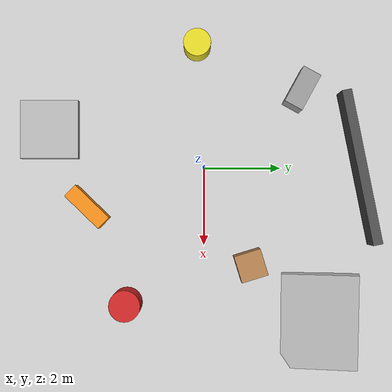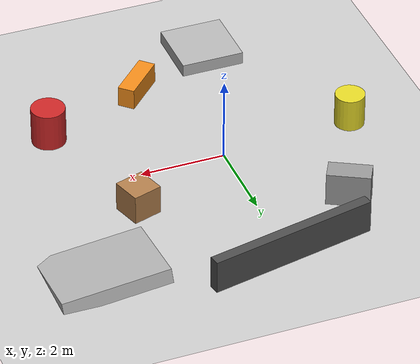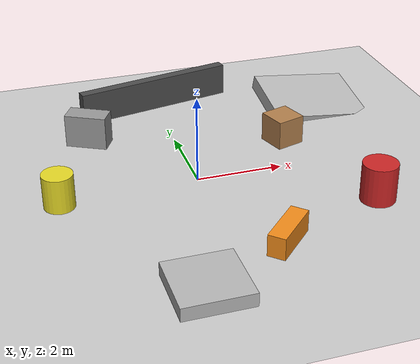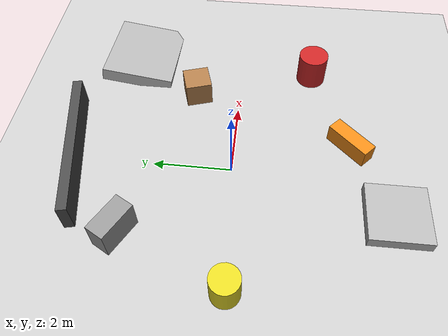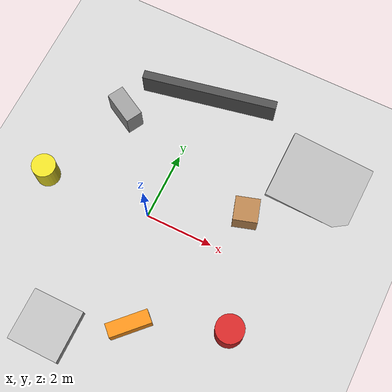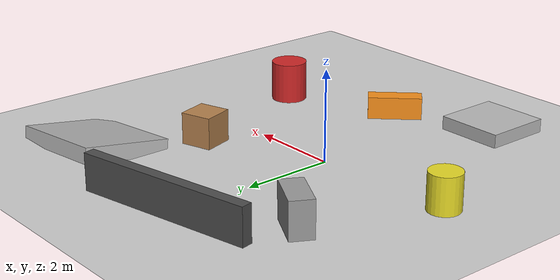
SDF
<sdf version="1.7">
 <world name="rough_obstacles">
  <gravity>0 0 -9.8</gravity>
  <physics type="ode">
   <max_step_size>0.001</max_step_size>
   <real_time_factor>1</real_time_factor>
   <real_time_update_rate>1000</real_time_update_rate>
  </physics>
  <scene><ambient>0.4 0.42 0.38 1</ambient><background>0.5 0.6 0.75 1</background><shadows>1</shadows></scene>
  <light name="sun" type="directional">
   <pose>0 0 20 0 -0 0</pose>
   <diffuse>0.9 0.9 0.85 1</diffuse>
   <specular>0.2 0.2 0.2 1</specular>
   <direction>-0.5 0.1 -0.9</direction>
   <attenuation><range>10</range></attenuation>
   <spot><inner_angle>0</inner_angle><outer_angle>0</outer_angle><falloff>0</falloff></spot>
  </light>
  <model name="ground_plane">
   <static>1</static>
   <link name="link">
    <collision name="collision">
     <geometry><plane><normal>0 0 1</normal><size>80 80</size></plane></geometry>
     <surface><friction><ode><mu>1.2</mu><mu2>1</mu2></ode></friction></surface>
    </collision>
    <visual name="visual">
     <cast_shadows>0</cast_shadows>
     <geometry><plane><normal>0 0 1</normal><size>80 80</size></plane></geometry>
     <material>
      <script><uri>file://media/materials/scripts/gazebo.material</uri><name>Gazebo/Dirt</name></script>
     </material>
    </visual>
   </link>
  </model>
  <model name="box_a">
   <static>1</static>
   <pose>2.5 1.2 0.35 0 -0 0.3</pose>
   <link name="link">
    <collision name="c"><geometry><box><size>0.7 0.7 0.7</size></box></geometry></collision>
    <visual name="v">
     <geometry><box><size>0.7 0.7 0.7</size></box></geometry>
     <material>
      <script><uri>file://media/materials/scripts/gazebo.material</uri><name>Gazebo/Wood</name></script>
     </material>
    </visual>
   </link>
  </model>
  <model name="box_b">
   <static>1</static>
   <pose>-2 2.5 0.4 0 0 -0.5</pose>
   <link name="link">
    <collision name="c"><geometry><box><size>1 0.5 0.8</size></box></geometry></collision>
    <visual name="v">
     <geometry><box><size>1 0.5 0.8</size></box></geometry>
     <material>
      <script><uri>file://media/materials/scripts/gazebo.material</uri><name>Gazebo/Grey</name></script>
     </material>
    </visual>
   </link>
  </model>
  <model name="box_c">
   <static>1</static>
   <pose>1 -3 0.25 0 -0 0.8</pose>
   <link name="link">
    <collision name="c"><geometry><box><size>1.2 0.4 0.5</size></box></geometry></collision>
    <visual name="v">
     <geometry><box><size>1.2 0.4 0.5</size></box></geometry>
     <material>
      <script><uri>file://media/materials/scripts/gazebo.material</uri><name>Gazebo/Orange</name></script>
     </material>
    </visual>
   </link>
  </model>
  <model name="cyl_a">
   <static>1</static>
   <pose>-3.15938 -0.171914 0.4 0 -0 0</pose>
   <link name="link">
    <collision name="c">
     <geometry><cylinder><radius>0.35</radius><length>0.8</length></cylinder></geometry>
    </collision>
    <visual name="v">
     <geometry><cylinder><radius>0.35</radius><length>0.8</length></cylinder></geometry>
     <material>
      <script><uri>file://media/materials/scripts/gazebo.material</uri><name>Gazebo/Yellow</name></script>
     </material>
    </visual>
   </link>
  </model>
  <model name="cyl_b">
   <static>1</static>
   <pose>3.5 -2 0.45 0 -0 0</pose>
   <link name="link">
    <collision name="c">
     <geometry><cylinder><radius>0.4</radius><length>0.9</length></cylinder></geometry>
    </collision>
    <visual name="v">
     <geometry><cylinder><radius>0.4</radius><length>0.9</length></cylinder></geometry>
     <material>
      <script><uri>file://media/materials/scripts/gazebo.material</uri><name>Gazebo/Red</name></script>
     </material>
    </visual>
   </link>
  </model>
  <model name="wall_short">
   <static>1</static>
   <pose>0 4 0.4 0 -0 0.2</pose>
   <link name="link">
    <collision name="c"><geometry><box><size>4 0.25 0.8</size></box></geometry></collision>
    <visual name="v">
     <geometry><box><size>4 0.25 0.8</size></box></geometry>
     <material>
      <script><uri>file://media/materials/scripts/gazebo.material</uri><name>Gazebo/DarkGrey</name></script>
     </material>
    </visual>
   </link>
  </model>
  <model name="step_cluster">
   <static>1</static>
   <pose>-1 -4 0.15 0 -0 0</pose>
   <link name="link">
    <collision name="c"><geometry><box><size>1.5 1.5 0.3</size></box></geometry></collision>
    <visual name="v">
     <geometry><box><size>1.5 1.5 0.3</size></box></geometry>
     <material>
      <script><uri>file://media/materials/scripts/gazebo.material</uri><name>Gazebo/Concrete</name></script>
     </material>
    </visual>
   </link>
  </model>
  <model name="low_mound">
   <static>1</static>
   <pose>3.98491 3.02284 0.049615 0.15 0.1 0</pose>
   <link name="link">
    <collision name="c"><geometry><box><size>2.5 2 0.35</size></box></geometry></collision>
    <visual name="v">
     <geometry><box><size>2.5 2 0.35</size></box></geometry>
     <material>
      <script><uri>file://media/materials/scripts/gazebo.material</uri><name>Gazebo/Dirt</name></script>
     </material>
    </visual>
   </link>
  </model>
  <magnetic_field>6e-06 2.3e-05 -4.2e-05</magnetic_field>
  <atmosphere type="adiabatic"/>
  <spherical_coordinates>
   <surface_model>EARTH_WGS84</surface_model>
   <latitude_deg>0</latitude_deg>
   <longitude_deg>0</longitude_deg>
   <elevation>0</elevation>
   <heading_deg>0</heading_deg>
  </spherical_coordinates>
 </world>
</sdf>
